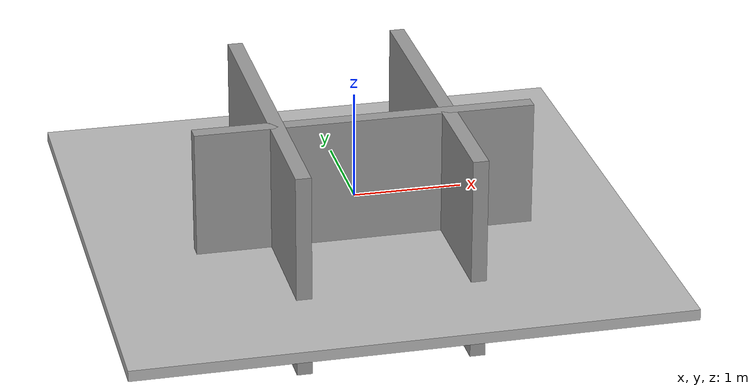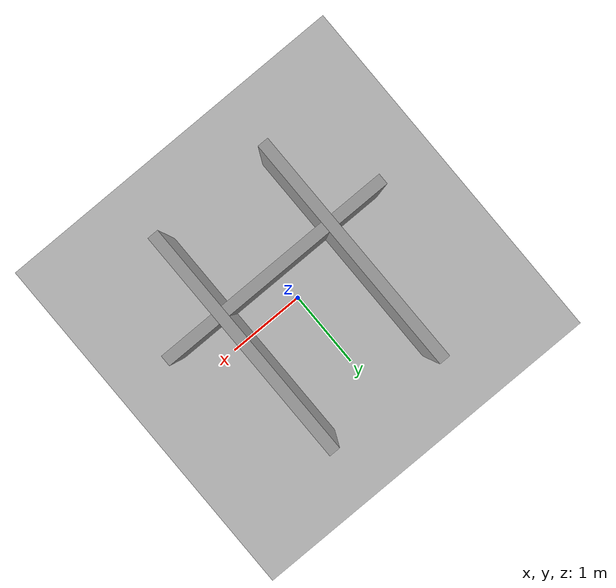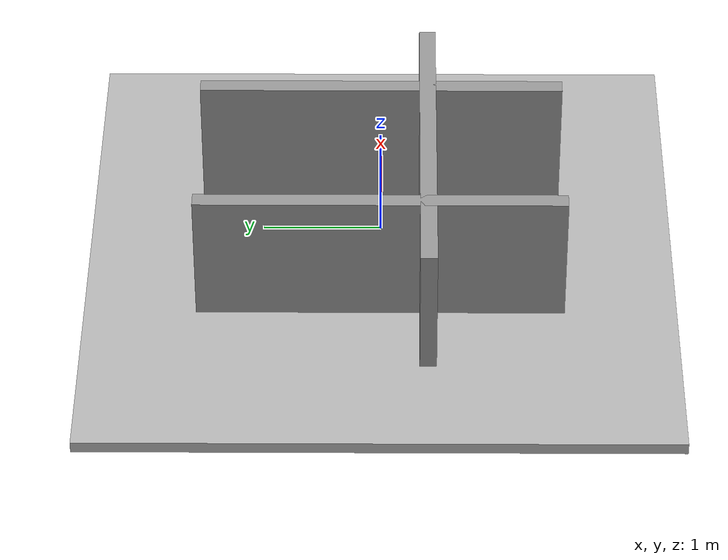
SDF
<?xml version="1.0" ?>
<sdf version="1.4">
    <world name="default">
        <scene>
            <grid>false</grid>
            <origin_visual>false</origin_visual>
            <sky>
                <clouds>
                    <speed>12</speed>
                </clouds>
            </sky>
        </scene>

        <physics name="ode" type="ode">
            <max_step_size>0.01</max_step_size>
            <real_time_factor>0.01</real_time_factor>
            <real_time_update_rate>10</real_time_update_rate>
        </physics>

        <plugin name="arm_gazebo_ros" filename="libarm_gazebo_ros_plugin.so"/>
        <model name="moveit_plugin_model">
            <pose>0 0 0 0 0 0</pose>
            <plugin name="gazebo_ros_moveit_planning_scene" filename="libgazebo_ros_moveit_planning_scene.so">
                <robotName>hdt_michigan</robotName> <!-- controls the robot name in the scene msg -->
                <robotNamespace>hdt_michigan</robotNamespace> <!-- controls the publisher topic name -->
                <!--  This must be the same as the root frame of the robot you're using, as defined by the URDF -->
                <frameId>hdt_michigan_root</frameId>
            </plugin>
        </model>

        <include>
            <uri>model://sun</uri>
        </include>

        <include>
            <uri>model://box_floor</uri>
            <pose>0 0 -0.21 0 0 0</pose>
        </include>

        <include>
            <name>left_wall</name>
            <uri>model://fake_wall</uri>
            <pose>-0.8 0 0 0 0 1.5707</pose>
        </include>

        <include>
            <name>right_wall</name>
            <uri>model://fake_wall</uri>
            <pose>0.77 0 0 0 0 1.5707</pose>
        </include>

        <include>
            <name>back_wall</name>
            <uri>model://fake_wall</uri>
            <pose>0 -.4 0 0 0 0</pose>
        </include>

    </world>
</sdf>

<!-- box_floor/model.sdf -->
<sdf version='1.7'>
  <model name='box_floor'>
    <link name='link'>
      <pose>0 0 -0.05 0 0 0</pose>
      <inertial>
        <mass>1</mass>
        <inertia>
          <ixx>0.166667</ixx>
          <ixy>0</ixy>
          <ixz>0</ixz>
          <iyy>0.166667</iyy>
          <iyz>0</iyz>
          <izz>0.166667</izz>
        </inertia>
      </inertial>
      <visual name='visual'>
        <geometry>
          <box>
            <size>5 5 0.1</size>
          </box>
        </geometry>
        <material>
            <script>
                <uri>model://my_ground_plane/concrete.material</uri>
                <name>ConcreteTexture</name>
            </script>
        </material>
      </visual>
      <collision name='collision'>
        <geometry>
          <box>
            <size>5 5 0.1</size>
          </box>
        </geometry>
      </collision>
    </link>
    <static>1</static>
    <allow_auto_disable>1</allow_auto_disable>
  </model>
</sdf>

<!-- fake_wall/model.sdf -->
<sdf version='1.7'>
  <model name='fake_wall'>
    <link name='unit_box::link'>
      <inertial>
        <mass>1</mass>
        <inertia>
          <ixx>0.166667</ixx>
          <ixy>0</ixy>
          <ixz>0</ixz>
          <iyy>0.166667</iyy>
          <iyz>0</iyz>
          <izz>0.166667</izz>
        </inertia>
        <pose>0 0 0 0 -0 0</pose>
      </inertial>
      <self_collide>0</self_collide>
      <enable_wind>0</enable_wind>
      <kinematic>1</kinematic>
      <pose>0 0 0 0 -0 0</pose>
      <visual name='visual'>
        <geometry>
          <box>
            <size>3.10724 0.140567 1.89855</size>
          </box>
        </geometry>
        <material>
          <script>
            <name>Gazebo/Grey</name>
            <uri>file://media/materials/scripts/gazebo.material</uri>
          </script>
          <shader type='pixel'/>
        </material>
        <pose>0 0 0 0 -0 0</pose>
        <transparency>0</transparency>
        <cast_shadows>1</cast_shadows>
      </visual>
      <collision name='collision'>
        <laser_retro>0</laser_retro>
        <max_contacts>10</max_contacts>
        <pose>0 0 0 0 -0 0</pose>
        <geometry>
          <box>
            <size>3.10724 0.140567 1.89855</size>
          </box>
        </geometry>
        <surface>
          <friction>
            <ode>
              <mu>1</mu>
              <mu2>1</mu2>
              <fdir1>0 0 0</fdir1>
              <slip1>0</slip1>
              <slip2>0</slip2>
            </ode>
            <torsional>
              <coefficient>1</coefficient>
              <patch_radius>0</patch_radius>
              <surface_radius>0</surface_radius>
              <use_patch_radius>1</use_patch_radius>
              <ode>
                <slip>0</slip>
              </ode>
            </torsional>
          </friction>
          <bounce>
            <restitution_coefficient>0</restitution_coefficient>
            <threshold>1e+06</threshold>
          </bounce>
          <contact>
            <collide_without_contact>0</collide_without_contact>
            <collide_without_contact_bitmask>1</collide_without_contact_bitmask>
            <collide_bitmask>1</collide_bitmask>
            <ode>
              <soft_cfm>0</soft_cfm>
              <soft_erp>0.2</soft_erp>
              <kp>1e+13</kp>
              <kd>1</kd>
              <max_vel>0.01</max_vel>
              <min_depth>0</min_depth>
            </ode>
            <bullet>
              <split_impulse>1</split_impulse>
              <split_impulse_penetration_threshold>-0.01</split_impulse_penetration_threshold>
              <soft_cfm>0</soft_cfm>
              <soft_erp>0.2</soft_erp>
              <kp>1e+13</kp>
              <kd>1</kd>
            </bullet>
          </contact>
        </surface>
      </collision>
    </link>
    <static>0</static>
    <allow_auto_disable>1</allow_auto_disable>
  </model>
</sdf>
